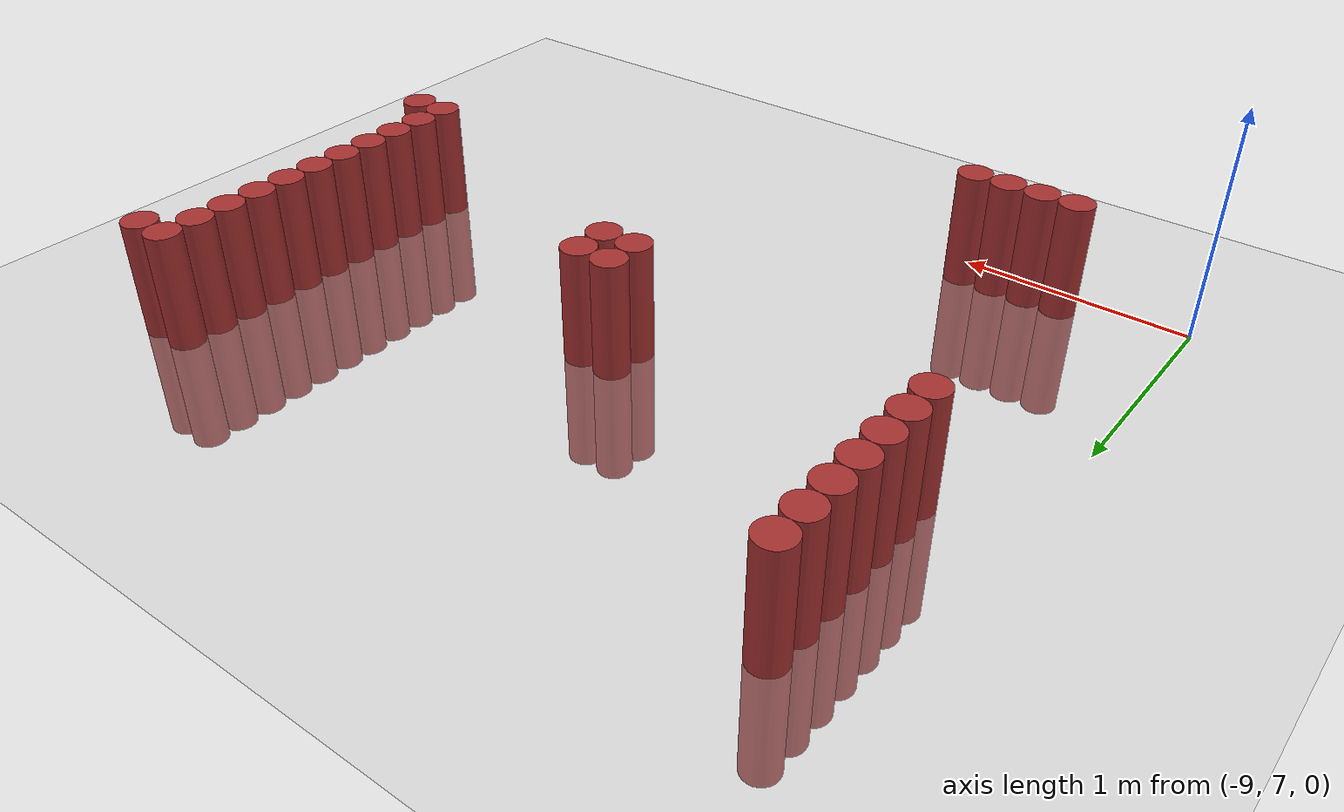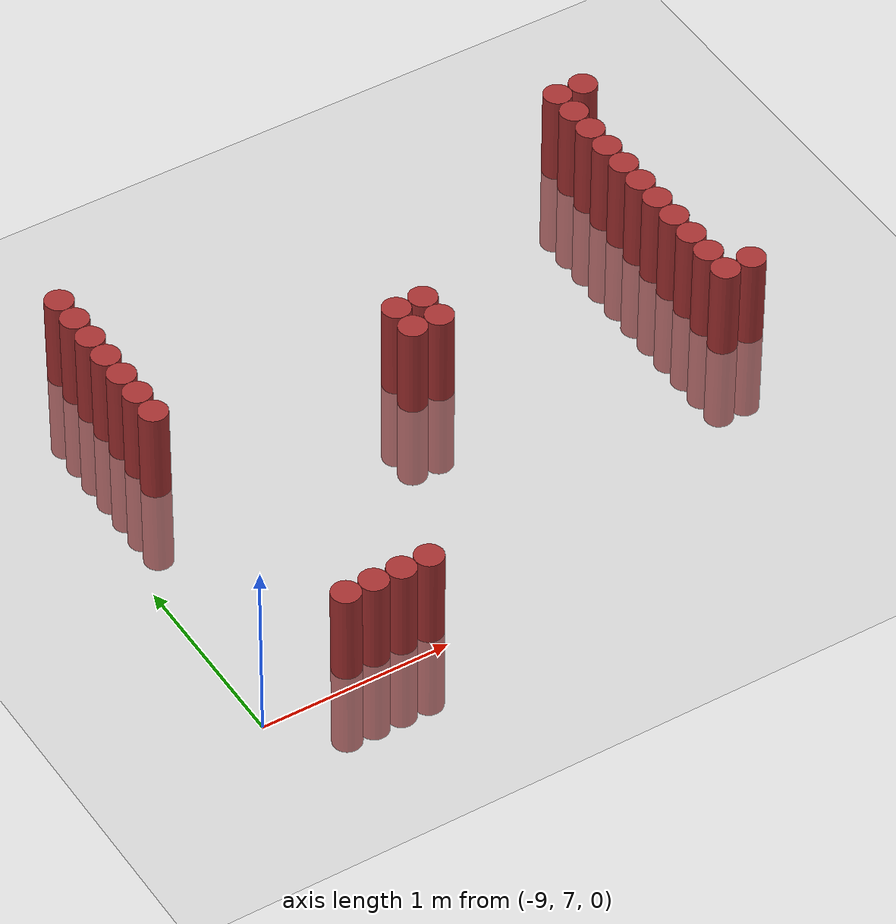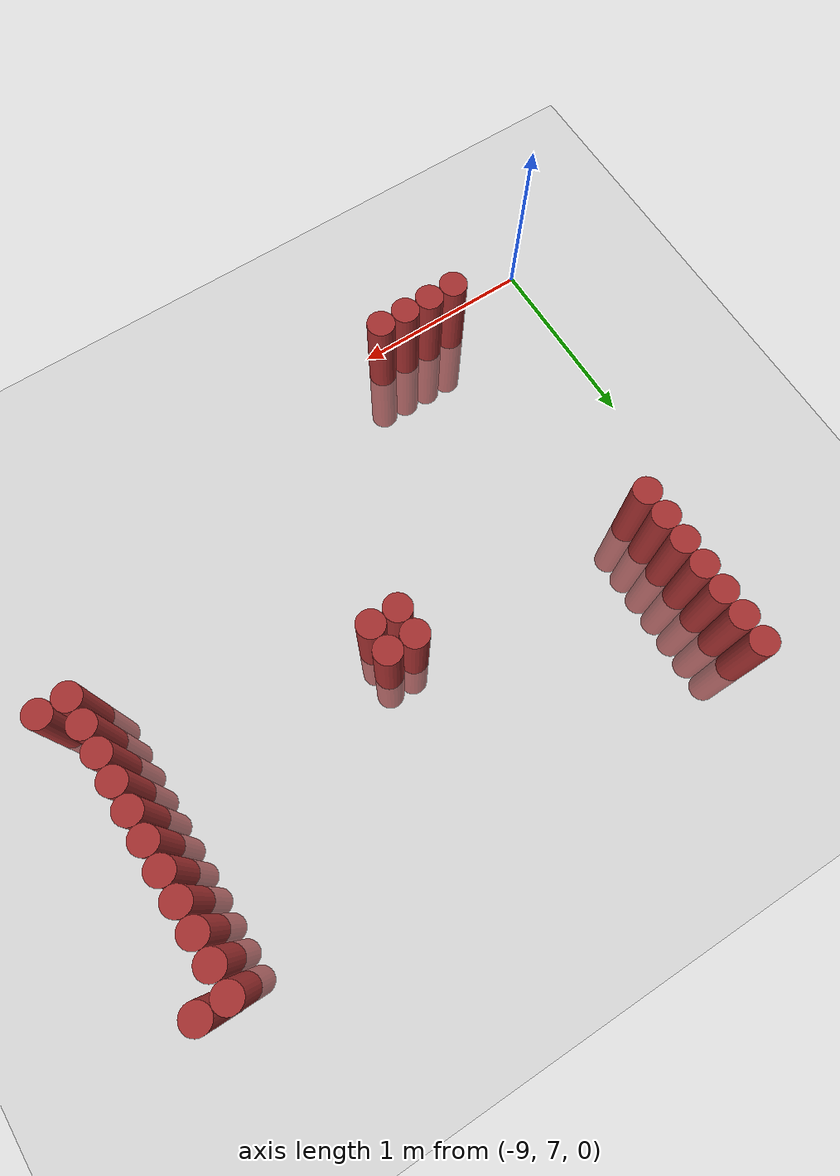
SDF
<sdf version="1.6">
 <world name="default">
  <model name="ground_plane">
   <static>1</static>
   <link name="link">
    <collision name="collision">
     <geometry><plane><normal>0 0 1</normal><size>100 100</size></plane></geometry>
     <surface><friction><ode><mu>100</mu><mu2>50</mu2></ode></friction></surface>
    </collision>
    <visual name="visual">
     <cast_shadows>0</cast_shadows>
     <geometry><plane><normal>0 0 1</normal><size>100 100</size></plane></geometry>
     <material>
      <script><uri>file://media/materials/scripts/gazebo.material</uri><name>Gazebo/Grey</name></script>
     </material>
    </visual>
   </link>
  </model>
  <model name="unit_cylinder_168">
   <static>1</static>
   <pose>-8.625000 8.625000 0.000000 0.000000 0.000000 0.000000</pose>
   <link name="link">
    <inertial>
     <mass>1</mass>
     <inertia><ixx>0.145833</ixx><ixy>0</ixy><ixz>0</ixz><iyy>0.145833</iyy><iyz>0</iyz><izz>0.125</izz></inertia>
    </inertial>
    <collision name="collision">
     <geometry><cylinder><radius>0.075000</radius><length>1</length></cylinder></geometry>
    </collision>
    <visual name="visual">
     <geometry><cylinder><radius>0.075000</radius><length>1</length></cylinder></geometry>
     <material>
      <ambient>0.648000 0.192000 0.192000 1</ambient>
      <diffuse>0.648000 0.192000 0.192000 1</diffuse>
     </material>
     <material>
      <script><name>Gazebo/Grey</name><uri>file://media/materials/scripts/gazebo.material</uri></script>
     </material>
    </visual>
   </link>
  </model>
  <model name="unit_cylinder_169">
   <static>1</static>
   <pose>-8.625000 8.775000 0.000000 0.000000 0.000000 0.000000</pose>
   <link name="link">
    <inertial>
     <mass>1</mass>
     <inertia><ixx>0.145833</ixx><ixy>0</ixy><ixz>0</ixz><iyy>0.145833</iyy><iyz>0</iyz><izz>0.125</izz></inertia>
    </inertial>
    <collision name="collision">
     <geometry><cylinder><radius>0.075000</radius><length>1</length></cylinder></geometry>
    </collision>
    <visual name="visual">
     <geometry><cylinder><radius>0.075000</radius><length>1</length></cylinder></geometry>
     <material>
      <ambient>0.648000 0.192000 0.192000 1</ambient>
      <diffuse>0.648000 0.192000 0.192000 1</diffuse>
     </material>
     <material>
      <script><name>Gazebo/Grey</name><uri>file://media/materials/scripts/gazebo.material</uri></script>
     </material>
    </visual>
   </link>
  </model>
  <model name="unit_cylinder_170">
   <static>1</static>
   <pose>-8.625000 8.925000 0.000000 0.000000 0.000000 0.000000</pose>
   <link name="link">
    <inertial>
     <mass>1</mass>
     <inertia><ixx>0.145833</ixx><ixy>0</ixy><ixz>0</ixz><iyy>0.145833</iyy><iyz>0</iyz><izz>0.125</izz></inertia>
    </inertial>
    <collision name="collision">
     <geometry><cylinder><radius>0.075000</radius><length>1</length></cylinder></geometry>
    </collision>
    <visual name="visual">
     <geometry><cylinder><radius>0.075000</radius><length>1</length></cylinder></geometry>
     <material>
      <ambient>0.648000 0.192000 0.192000 1</ambient>
      <diffuse>0.648000 0.192000 0.192000 1</diffuse>
     </material>
     <material>
      <script><name>Gazebo/Grey</name><uri>file://media/materials/scripts/gazebo.material</uri></script>
     </material>
    </visual>
   </link>
  </model>
  <model name="unit_cylinder_171">
   <static>1</static>
   <pose>-8.625000 9.075000 0.000000 0.000000 0.000000 0.000000</pose>
   <link name="link">
    <inertial>
     <mass>1</mass>
     <inertia><ixx>0.145833</ixx><ixy>0</ixy><ixz>0</ixz><iyy>0.145833</iyy><iyz>0</iyz><izz>0.125</izz></inertia>
    </inertial>
    <collision name="collision">
     <geometry><cylinder><radius>0.075000</radius><length>1</length></cylinder></geometry>
    </collision>
    <visual name="visual">
     <geometry><cylinder><radius>0.075000</radius><length>1</length></cylinder></geometry>
     <material>
      <ambient>0.648000 0.192000 0.192000 1</ambient>
      <diffuse>0.648000 0.192000 0.192000 1</diffuse>
     </material>
     <material>
      <script><name>Gazebo/Grey</name><uri>file://media/materials/scripts/gazebo.material</uri></script>
     </material>
    </visual>
   </link>
  </model>
  <model name="unit_cylinder_172">
   <static>1</static>
   <pose>-8.625000 9.225000 0.000000 0.000000 0.000000 0.000000</pose>
   <link name="link">
    <inertial>
     <mass>1</mass>
     <inertia><ixx>0.145833</ixx><ixy>0</ixy><ixz>0</ixz><iyy>0.145833</iyy><iyz>0</iyz><izz>0.125</izz></inertia>
    </inertial>
    <collision name="collision">
     <geometry><cylinder><radius>0.075000</radius><length>1</length></cylinder></geometry>
    </collision>
    <visual name="visual">
     <geometry><cylinder><radius>0.075000</radius><length>1</length></cylinder></geometry>
     <material>
      <ambient>0.648000 0.192000 0.192000 1</ambient>
      <diffuse>0.648000 0.192000 0.192000 1</diffuse>
     </material>
     <material>
      <script><name>Gazebo/Grey</name><uri>file://media/materials/scripts/gazebo.material</uri></script>
     </material>
    </visual>
   </link>
  </model>
  <model name="unit_cylinder_173">
   <static>1</static>
   <pose>-8.625000 9.375000 0.000000 0.000000 0.000000 0.000000</pose>
   <link name="link">
    <inertial>
     <mass>1</mass>
     <inertia><ixx>0.145833</ixx><ixy>0</ixy><ixz>0</ixz><iyy>0.145833</iyy><iyz>0</iyz><izz>0.125</izz></inertia>
    </inertial>
    <collision name="collision">
     <geometry><cylinder><radius>0.075000</radius><length>1</length></cylinder></geometry>
    </collision>
    <visual name="visual">
     <geometry><cylinder><radius>0.075000</radius><length>1</length></cylinder></geometry>
     <material>
      <ambient>0.648000 0.192000 0.192000 1</ambient>
      <diffuse>0.648000 0.192000 0.192000 1</diffuse>
     </material>
     <material>
      <script><name>Gazebo/Grey</name><uri>file://media/materials/scripts/gazebo.material</uri></script>
     </material>
    </visual>
   </link>
  </model>
  <model name="unit_cylinder_174">
   <static>1</static>
   <pose>-8.625000 9.525000 0.000000 0.000000 0.000000 0.000000</pose>
   <link name="link">
    <inertial>
     <mass>1</mass>
     <inertia><ixx>0.145833</ixx><ixy>0</ixy><ixz>0</ixz><iyy>0.145833</iyy><iyz>0</iyz><izz>0.125</izz></inertia>
    </inertial>
    <collision name="collision">
     <geometry><cylinder><radius>0.075000</radius><length>1</length></cylinder></geometry>
    </collision>
    <visual name="visual">
     <geometry><cylinder><radius>0.075000</radius><length>1</length></cylinder></geometry>
     <material>
      <ambient>0.648000 0.192000 0.192000 1</ambient>
      <diffuse>0.648000 0.192000 0.192000 1</diffuse>
     </material>
     <material>
      <script><name>Gazebo/Grey</name><uri>file://media/materials/scripts/gazebo.material</uri></script>
     </material>
    </visual>
   </link>
  </model>
  <model name="unit_cylinder_176">
   <static>1</static>
   <pose>-8.475000 7.125000 0.000000 0.000000 0.000000 0.000000</pose>
   <link name="link">
    <inertial>
     <mass>1</mass>
     <inertia><ixx>0.145833</ixx><ixy>0</ixy><ixz>0</ixz><iyy>0.145833</iyy><iyz>0</iyz><izz>0.125</izz></inertia>
    </inertial>
    <collision name="collision">
     <geometry><cylinder><radius>0.075000</radius><length>1</length></cylinder></geometry>
    </collision>
    <visual name="visual">
     <geometry><cylinder><radius>0.075000</radius><length>1</length></cylinder></geometry>
     <material>
      <ambient>0.648000 0.192000 0.192000 1</ambient>
      <diffuse>0.648000 0.192000 0.192000 1</diffuse>
     </material>
     <material>
      <script><name>Gazebo/Grey</name><uri>file://media/materials/scripts/gazebo.material</uri></script>
     </material>
    </visual>
   </link>
  </model>
  <model name="unit_cylinder_178">
   <static>1</static>
   <pose>-8.325000 7.125000 0.000000 0.000000 0.000000 0.000000</pose>
   <link name="link">
    <inertial>
     <mass>1</mass>
     <inertia><ixx>0.145833</ixx><ixy>0</ixy><ixz>0</ixz><iyy>0.145833</iyy><iyz>0</iyz><izz>0.125</izz></inertia>
    </inertial>
    <collision name="collision">
     <geometry><cylinder><radius>0.075000</radius><length>1</length></cylinder></geometry>
    </collision>
    <visual name="visual">
     <geometry><cylinder><radius>0.075000</radius><length>1</length></cylinder></geometry>
     <material>
      <ambient>0.648000 0.192000 0.192000 1</ambient>
      <diffuse>0.648000 0.192000 0.192000 1</diffuse>
     </material>
     <material>
      <script><name>Gazebo/Grey</name><uri>file://media/materials/scripts/gazebo.material</uri></script>
     </material>
    </visual>
   </link>
  </model>
  <model name="unit_cylinder_180">
   <static>1</static>
   <pose>-8.175000 7.125000 0.000000 0.000000 0.000000 0.000000</pose>
   <link name="link">
    <inertial>
     <mass>1</mass>
     <inertia><ixx>0.145833</ixx><ixy>0</ixy><ixz>0</ixz><iyy>0.145833</iyy><iyz>0</iyz><izz>0.125</izz></inertia>
    </inertial>
    <collision name="collision">
     <geometry><cylinder><radius>0.075000</radius><length>1</length></cylinder></geometry>
    </collision>
    <visual name="visual">
     <geometry><cylinder><radius>0.075000</radius><length>1</length></cylinder></geometry>
     <material>
      <ambient>0.648000 0.192000 0.192000 1</ambient>
      <diffuse>0.648000 0.192000 0.192000 1</diffuse>
     </material>
     <material>
      <script><name>Gazebo/Grey</name><uri>file://media/materials/scripts/gazebo.material</uri></script>
     </material>
    </visual>
   </link>
  </model>
  <model name="unit_cylinder_194">
   <static>1</static>
   <pose>-8.025000 7.125000 0.000000 0.000000 0.000000 0.000000</pose>
   <link name="link">
    <inertial>
     <mass>1</mass>
     <inertia><ixx>0.145833</ixx><ixy>0</ixy><ixz>0</ixz><iyy>0.145833</iyy><iyz>0</iyz><izz>0.125</izz></inertia>
    </inertial>
    <collision name="collision">
     <geometry><cylinder><radius>0.075000</radius><length>1</length></cylinder></geometry>
    </collision>
    <visual name="visual">
     <geometry><cylinder><radius>0.075000</radius><length>1</length></cylinder></geometry>
     <material>
      <ambient>0.648000 0.192000 0.192000 1</ambient>
      <diffuse>0.648000 0.192000 0.192000 1</diffuse>
     </material>
     <material>
      <script><name>Gazebo/Grey</name><uri>file://media/materials/scripts/gazebo.material</uri></script>
     </material>
    </visual>
   </link>
  </model>
  <model name="unit_cylinder_195">
   <static>1</static>
   <pose>-7.275000 8.475000 0.000000 0.000000 0.000000 0.000000</pose>
   <link name="link">
    <inertial>
     <mass>1</mass>
     <inertia><ixx>0.145833</ixx><ixy>0</ixy><ixz>0</ixz><iyy>0.145833</iyy><iyz>0</iyz><izz>0.125</izz></inertia>
    </inertial>
    <collision name="collision">
     <geometry><cylinder><radius>0.075000</radius><length>1</length></cylinder></geometry>
    </collision>
    <visual name="visual">
     <geometry><cylinder><radius>0.075000</radius><length>1</length></cylinder></geometry>
     <material>
      <ambient>0.648000 0.192000 0.192000 1</ambient>
      <diffuse>0.648000 0.192000 0.192000 1</diffuse>
     </material>
     <material>
      <script><name>Gazebo/Grey</name><uri>file://media/materials/scripts/gazebo.material</uri></script>
     </material>
    </visual>
   </link>
  </model>
  <model name="unit_cylinder_196">
   <static>1</static>
   <pose>-7.275000 8.625000 0.000000 0.000000 0.000000 0.000000</pose>
   <link name="link">
    <inertial>
     <mass>1</mass>
     <inertia><ixx>0.145833</ixx><ixy>0</ixy><ixz>0</ixz><iyy>0.145833</iyy><iyz>0</iyz><izz>0.125</izz></inertia>
    </inertial>
    <collision name="collision">
     <geometry><cylinder><radius>0.075000</radius><length>1</length></cylinder></geometry>
    </collision>
    <visual name="visual">
     <geometry><cylinder><radius>0.075000</radius><length>1</length></cylinder></geometry>
     <material>
      <ambient>0.648000 0.192000 0.192000 1</ambient>
      <diffuse>0.648000 0.192000 0.192000 1</diffuse>
     </material>
     <material>
      <script><name>Gazebo/Grey</name><uri>file://media/materials/scripts/gazebo.material</uri></script>
     </material>
    </visual>
   </link>
  </model>
  <model name="unit_cylinder_197">
   <static>1</static>
   <pose>-7.125000 8.475000 0.000000 0.000000 0.000000 0.000000</pose>
   <link name="link">
    <inertial>
     <mass>1</mass>
     <inertia><ixx>0.145833</ixx><ixy>0</ixy><ixz>0</ixz><iyy>0.145833</iyy><iyz>0</iyz><izz>0.125</izz></inertia>
    </inertial>
    <collision name="collision">
     <geometry><cylinder><radius>0.075000</radius><length>1</length></cylinder></geometry>
    </collision>
    <visual name="visual">
     <geometry><cylinder><radius>0.075000</radius><length>1</length></cylinder></geometry>
     <material>
      <ambient>0.648000 0.192000 0.192000 1</ambient>
      <diffuse>0.648000 0.192000 0.192000 1</diffuse>
     </material>
     <material>
      <script><name>Gazebo/Grey</name><uri>file://media/materials/scripts/gazebo.material</uri></script>
     </material>
    </visual>
   </link>
  </model>
  <model name="unit_cylinder_198">
   <static>1</static>
   <pose>-7.125000 8.625000 0.000000 0.000000 0.000000 0.000000</pose>
   <link name="link">
    <inertial>
     <mass>1</mass>
     <inertia><ixx>0.145833</ixx><ixy>0</ixy><ixz>0</ixz><iyy>0.145833</iyy><iyz>0</iyz><izz>0.125</izz></inertia>
    </inertial>
    <collision name="collision">
     <geometry><cylinder><radius>0.075000</radius><length>1</length></cylinder></geometry>
    </collision>
    <visual name="visual">
     <geometry><cylinder><radius>0.075000</radius><length>1</length></cylinder></geometry>
     <material>
      <ambient>0.648000 0.192000 0.192000 1</ambient>
      <diffuse>0.648000 0.192000 0.192000 1</diffuse>
     </material>
     <material>
      <script><name>Gazebo/Grey</name><uri>file://media/materials/scripts/gazebo.material</uri></script>
     </material>
    </visual>
   </link>
  </model>
  <model name="unit_cylinder_228">
   <static>1</static>
   <pose>-5.775000 8.025000 0.000000 0.000000 0.000000 0.000000</pose>
   <link name="link">
    <inertial>
     <mass>1</mass>
     <inertia><ixx>0.145833</ixx><ixy>0</ixy><ixz>0</ixz><iyy>0.145833</iyy><iyz>0</iyz><izz>0.125</izz></inertia>
    </inertial>
    <collision name="collision">
     <geometry><cylinder><radius>0.075000</radius><length>1</length></cylinder></geometry>
    </collision>
    <visual name="visual">
     <geometry><cylinder><radius>0.075000</radius><length>1</length></cylinder></geometry>
     <material>
      <ambient>0.648000 0.192000 0.192000 1</ambient>
      <diffuse>0.648000 0.192000 0.192000 1</diffuse>
     </material>
     <material>
      <script><name>Gazebo/Grey</name><uri>file://media/materials/scripts/gazebo.material</uri></script>
     </material>
    </visual>
   </link>
  </model>
  <model name="unit_cylinder_229">
   <static>1</static>
   <pose>-5.775000 8.175000 0.000000 0.000000 0.000000 0.000000</pose>
   <link name="link">
    <inertial>
     <mass>1</mass>
     <inertia><ixx>0.145833</ixx><ixy>0</ixy><ixz>0</ixz><iyy>0.145833</iyy><iyz>0</iyz><izz>0.125</izz></inertia>
    </inertial>
    <collision name="collision">
     <geometry><cylinder><radius>0.075000</radius><length>1</length></cylinder></geometry>
    </collision>
    <visual name="visual">
     <geometry><cylinder><radius>0.075000</radius><length>1</length></cylinder></geometry>
     <material>
      <ambient>0.648000 0.192000 0.192000 1</ambient>
      <diffuse>0.648000 0.192000 0.192000 1</diffuse>
     </material>
     <material>
      <script><name>Gazebo/Grey</name><uri>file://media/materials/scripts/gazebo.material</uri></script>
     </material>
    </visual>
   </link>
  </model>
  <model name="unit_cylinder_230">
   <static>1</static>
   <pose>-5.775000 8.325000 0.000000 0.000000 0.000000 0.000000</pose>
   <link name="link">
    <inertial>
     <mass>1</mass>
     <inertia><ixx>0.145833</ixx><ixy>0</ixy><ixz>0</ixz><iyy>0.145833</iyy><iyz>0</iyz><izz>0.125</izz></inertia>
    </inertial>
    <collision name="collision">
     <geometry><cylinder><radius>0.075000</radius><length>1</length></cylinder></geometry>
    </collision>
    <visual name="visual">
     <geometry><cylinder><radius>0.075000</radius><length>1</length></cylinder></geometry>
     <material>
      <ambient>0.648000 0.192000 0.192000 1</ambient>
      <diffuse>0.648000 0.192000 0.192000 1</diffuse>
     </material>
     <material>
      <script><name>Gazebo/Grey</name><uri>file://media/materials/scripts/gazebo.material</uri></script>
     </material>
    </visual>
   </link>
  </model>
  <model name="unit_cylinder_231">
   <static>1</static>
   <pose>-5.775000 8.475000 0.000000 0.000000 0.000000 0.000000</pose>
   <link name="link">
    <inertial>
     <mass>1</mass>
     <inertia><ixx>0.145833</ixx><ixy>0</ixy><ixz>0</ixz><iyy>0.145833</iyy><iyz>0</iyz><izz>0.125</izz></inertia>
    </inertial>
    <collision name="collision">
     <geometry><cylinder><radius>0.075000</radius><length>1</length></cylinder></geometry>
    </collision>
    <visual name="visual">
     <geometry><cylinder><radius>0.075000</radius><length>1</length></cylinder></geometry>
     <material>
      <ambient>0.648000 0.192000 0.192000 1</ambient>
      <diffuse>0.648000 0.192000 0.192000 1</diffuse>
     </material>
     <material>
      <script><name>Gazebo/Grey</name><uri>file://media/materials/scripts/gazebo.material</uri></script>
     </material>
    </visual>
   </link>
  </model>
  <model name="unit_cylinder_232">
   <static>1</static>
   <pose>-5.775000 8.625000 0.000000 0.000000 0.000000 0.000000</pose>
   <link name="link">
    <inertial>
     <mass>1</mass>
     <inertia><ixx>0.145833</ixx><ixy>0</ixy><ixz>0</ixz><iyy>0.145833</iyy><iyz>0</iyz><izz>0.125</izz></inertia>
    </inertial>
    <collision name="collision">
     <geometry><cylinder><radius>0.075000</radius><length>1</length></cylinder></geometry>
    </collision>
    <visual name="visual">
     <geometry><cylinder><radius>0.075000</radius><length>1</length></cylinder></geometry>
     <material>
      <ambient>0.648000 0.192000 0.192000 1</ambient>
      <diffuse>0.648000 0.192000 0.192000 1</diffuse>
     </material>
     <material>
      <script><name>Gazebo/Grey</name><uri>file://media/materials/scripts/gazebo.material</uri></script>
     </material>
    </visual>
   </link>
  </model>
  <model name="unit_cylinder_233">
   <static>1</static>
   <pose>-5.775000 8.775000 0.000000 0.000000 0.000000 0.000000</pose>
   <link name="link">
    <inertial>
     <mass>1</mass>
     <inertia><ixx>0.145833</ixx><ixy>0</ixy><ixz>0</ixz><iyy>0.145833</iyy><iyz>0</iyz><izz>0.125</izz></inertia>
    </inertial>
    <collision name="collision">
     <geometry><cylinder><radius>0.075000</radius><length>1</length></cylinder></geometry>
    </collision>
    <visual name="visual">
     <geometry><cylinder><radius>0.075000</radius><length>1</length></cylinder></geometry>
     <material>
      <ambient>0.648000 0.192000 0.192000 1</ambient>
      <diffuse>0.648000 0.192000 0.192000 1</diffuse>
     </material>
     <material>
      <script><name>Gazebo/Grey</name><uri>file://media/materials/scripts/gazebo.material</uri></script>
     </material>
    </visual>
   </link>
  </model>
  <model name="unit_cylinder_234">
   <static>1</static>
   <pose>-5.775000 8.925000 0.000000 0.000000 0.000000 0.000000</pose>
   <link name="link">
    <inertial>
     <mass>1</mass>
     <inertia><ixx>0.145833</ixx><ixy>0</ixy><ixz>0</ixz><iyy>0.145833</iyy><iyz>0</iyz><izz>0.125</izz></inertia>
    </inertial>
    <collision name="collision">
     <geometry><cylinder><radius>0.075000</radius><length>1</length></cylinder></geometry>
    </collision>
    <visual name="visual">
     <geometry><cylinder><radius>0.075000</radius><length>1</length></cylinder></geometry>
     <material>
      <ambient>0.648000 0.192000 0.192000 1</ambient>
      <diffuse>0.648000 0.192000 0.192000 1</diffuse>
     </material>
     <material>
      <script><name>Gazebo/Grey</name><uri>file://media/materials/scripts/gazebo.material</uri></script>
     </material>
    </visual>
   </link>
  </model>
  <model name="unit_cylinder_235">
   <static>1</static>
   <pose>-5.775000 9.075000 0.000000 0.000000 0.000000 0.000000</pose>
   <link name="link">
    <inertial>
     <mass>1</mass>
     <inertia><ixx>0.145833</ixx><ixy>0</ixy><ixz>0</ixz><iyy>0.145833</iyy><iyz>0</iyz><izz>0.125</izz></inertia>
    </inertial>
    <collision name="collision">
     <geometry><cylinder><radius>0.075000</radius><length>1</length></cylinder></geometry>
    </collision>
    <visual name="visual">
     <geometry><cylinder><radius>0.075000</radius><length>1</length></cylinder></geometry>
     <material>
      <ambient>0.648000 0.192000 0.192000 1</ambient>
      <diffuse>0.648000 0.192000 0.192000 1</diffuse>
     </material>
     <material>
      <script><name>Gazebo/Grey</name><uri>file://media/materials/scripts/gazebo.material</uri></script>
     </material>
    </visual>
   </link>
  </model>
  <model name="unit_cylinder_236">
   <static>1</static>
   <pose>-5.775000 9.225000 0.000000 0.000000 0.000000 0.000000</pose>
   <link name="link">
    <inertial>
     <mass>1</mass>
     <inertia><ixx>0.145833</ixx><ixy>0</ixy><ixz>0</ixz><iyy>0.145833</iyy><iyz>0</iyz><izz>0.125</izz></inertia>
    </inertial>
    <collision name="collision">
     <geometry><cylinder><radius>0.075000</radius><length>1</length></cylinder></geometry>
    </collision>
    <visual name="visual">
     <geometry><cylinder><radius>0.075000</radius><length>1</length></cylinder></geometry>
     <material>
      <ambient>0.648000 0.192000 0.192000 1</ambient>
      <diffuse>0.648000 0.192000 0.192000 1</diffuse>
     </material>
     <material>
      <script><name>Gazebo/Grey</name><uri>file://media/materials/scripts/gazebo.material</uri></script>
     </material>
    </visual>
   </link>
  </model>
  <model name="unit_cylinder_237">
   <static>1</static>
   <pose>-5.775000 9.375000 0.000000 0.000000 0.000000 0.000000</pose>
   <link name="link">
    <inertial>
     <mass>1</mass>
     <inertia><ixx>0.145833</ixx><ixy>0</ixy><ixz>0</ixz><iyy>0.145833</iyy><iyz>0</iyz><izz>0.125</izz></inertia>
    </inertial>
    <collision name="collision">
     <geometry><cylinder><radius>0.075000</radius><length>1</length></cylinder></geometry>
    </collision>
    <visual name="visual">
     <geometry><cylinder><radius>0.075000</radius><length>1</length></cylinder></geometry>
     <material>
      <ambient>0.648000 0.192000 0.192000 1</ambient>
      <diffuse>0.648000 0.192000 0.192000 1</diffuse>
     </material>
     <material>
      <script><name>Gazebo/Grey</name><uri>file://media/materials/scripts/gazebo.material</uri></script>
     </material>
    </visual>
   </link>
  </model>
  <model name="unit_cylinder_238">
   <static>1</static>
   <pose>-5.775000 9.525000 0.000000 0.000000 0.000000 0.000000</pose>
   <link name="link">
    <inertial>
     <mass>1</mass>
     <inertia><ixx>0.145833</ixx><ixy>0</ixy><ixz>0</ixz><iyy>0.145833</iyy><iyz>0</iyz><izz>0.125</izz></inertia>
    </inertial>
    <collision name="collision">
     <geometry><cylinder><radius>0.075000</radius><length>1</length></cylinder></geometry>
    </collision>
    <visual name="visual">
     <geometry><cylinder><radius>0.075000</radius><length>1</length></cylinder></geometry>
     <material>
      <ambient>0.648000 0.192000 0.192000 1</ambient>
      <diffuse>0.648000 0.192000 0.192000 1</diffuse>
     </material>
     <material>
      <script><name>Gazebo/Grey</name><uri>file://media/materials/scripts/gazebo.material</uri></script>
     </material>
    </visual>
   </link>
  </model>
  <model name="unit_cylinder_243">
   <static>1</static>
   <pose>-5.625000 8.025000 0.000000 0.000000 0.000000 0.000000</pose>
   <link name="link">
    <inertial>
     <mass>1</mass>
     <inertia><ixx>0.145833</ixx><ixy>0</ixy><ixz>0</ixz><iyy>0.145833</iyy><iyz>0</iyz><izz>0.125</izz></inertia>
    </inertial>
    <collision name="collision">
     <geometry><cylinder><radius>0.075000</radius><length>1</length></cylinder></geometry>
    </collision>
    <visual name="visual">
     <geometry><cylinder><radius>0.075000</radius><length>1</length></cylinder></geometry>
     <material>
      <ambient>0.648000 0.192000 0.192000 1</ambient>
      <diffuse>0.648000 0.192000 0.192000 1</diffuse>
     </material>
     <material>
      <script><name>Gazebo/Grey</name><uri>file://media/materials/scripts/gazebo.material</uri></script>
     </material>
    </visual>
   </link>
  </model>
  <model name="unit_cylinder_244">
   <static>1</static>
   <pose>-5.625000 9.525000 0.000000 0.000000 0.000000 0.000000</pose>
   <link name="link">
    <inertial>
     <mass>1</mass>
     <inertia><ixx>0.145833</ixx><ixy>0</ixy><ixz>0</ixz><iyy>0.145833</iyy><iyz>0</iyz><izz>0.125</izz></inertia>
    </inertial>
    <collision name="collision">
     <geometry><cylinder><radius>0.075000</radius><length>1</length></cylinder></geometry>
    </collision>
    <visual name="visual">
     <geometry><cylinder><radius>0.075000</radius><length>1</length></cylinder></geometry>
     <material>
      <ambient>0.648000 0.192000 0.192000 1</ambient>
      <diffuse>0.648000 0.192000 0.192000 1</diffuse>
     </material>
     <material>
      <script><name>Gazebo/Grey</name><uri>file://media/materials/scripts/gazebo.material</uri></script>
     </material>
    </visual>
   </link>
  </model>
 </world>
</sdf>
